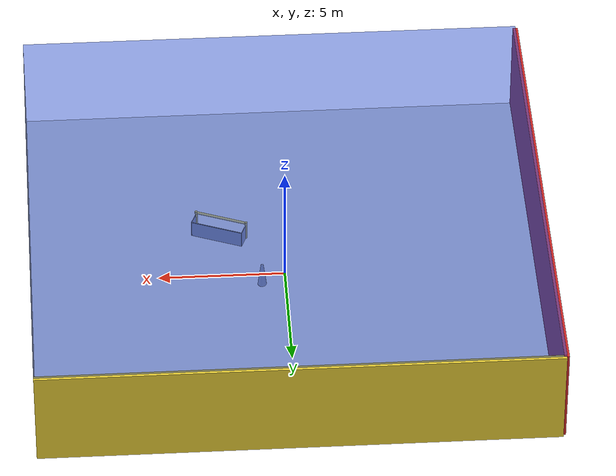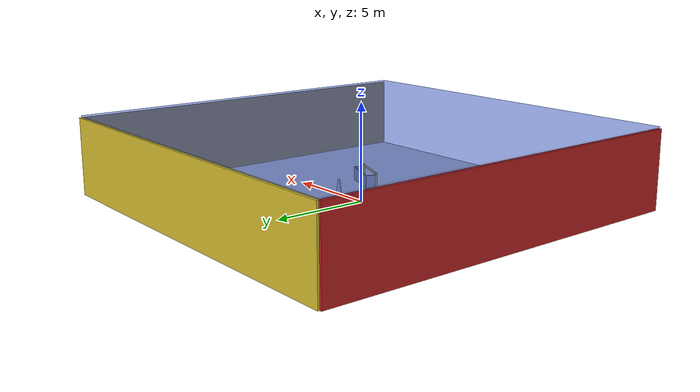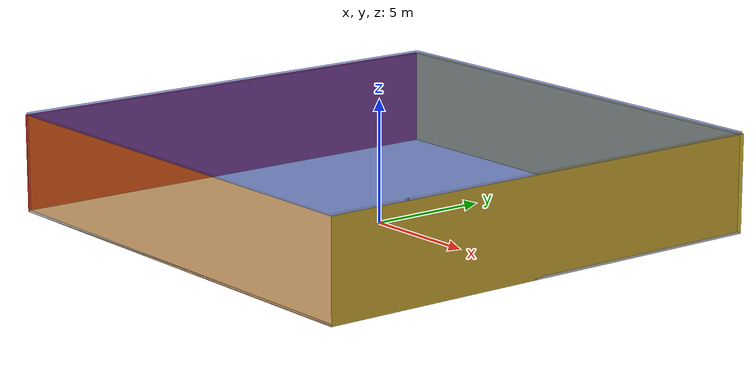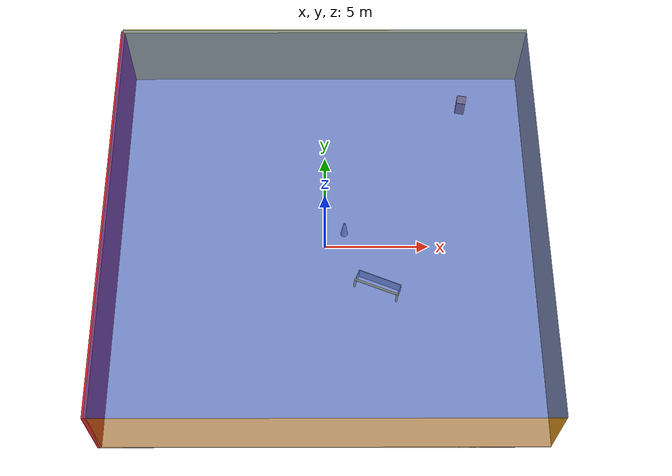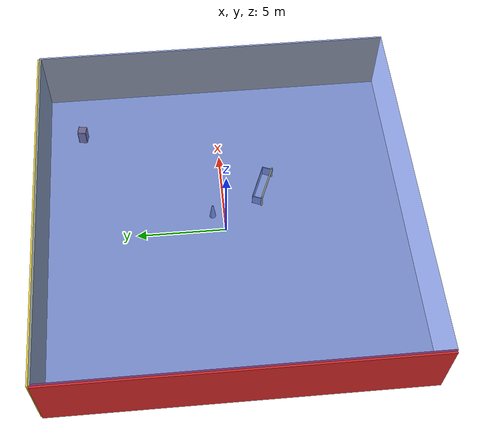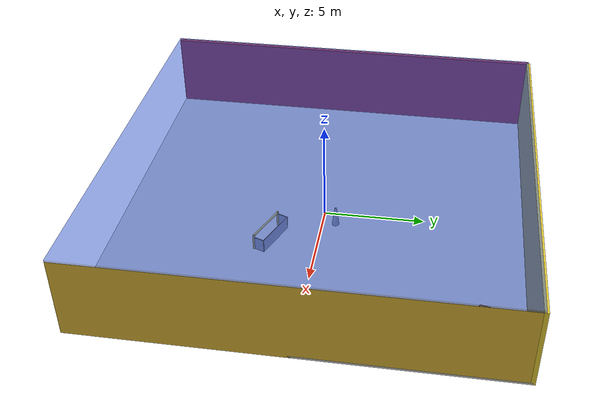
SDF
<sdf version="1.4">
 <world name="default">
  <physics type="ode">
   <max_step_size>0.001</max_step_size>
   <real_time_factor>1</real_time_factor>
   <real_time_update_rate>1000</real_time_update_rate>
   <gravity>0 0 -9.8</gravity>
  </physics>
  <scene><ambient>0.4 0.4 0.4 1</ambient><background>0.7 0.7 0.7 1</background><shadows>1</shadows></scene>
  <model name="Surrounding">
   <static>1</static>
   <link name="Ceiling">
    <collision name="Ceiling_Collision"><geometry><box><size>20 20 0.1</size></box></geometry></collision>
    <visual name="Ceiling_Visual">
     <geometry><box><size>20 20 0.1</size></box></geometry>
     <material>
      <script><uri>file://media/materials/scripts/gazebo.material</uri><name>Gazebo/BlueTransparent</name></script>
     </material>
    </visual>
    <pose>0 0 4.05 0 0 0</pose>
   </link>
   <link name="Wall_South">
    <collision name="Wall_South_Collision">
     <geometry><box><size>20 0 4</size></box></geometry>
     <pose>0 0 2 0 -0 0</pose>
    </collision>
    <visual name="Wall_South_Visual">
     <pose>0 0 2 0 -0 0</pose>
     <geometry><box><size>20 0 4</size></box></geometry>
     <material>
      <script>
       <uri>file://media/materials/scripts/gazebo.material</uri>
       <name>Gazebo/OrangeTransparent</name>
      </script>
     </material>
    </visual>
    <velocity_decay><linear>0</linear><angular>0</angular></velocity_decay>
    <pose>0 -10 0 0 -0 0</pose>
   </link>
   <link name="Wall_East">
    <collision name="Wall_21_Collision">
     <geometry><box><size>20 0 4</size></box></geometry>
     <pose>0 0 2 0 -0 0</pose>
    </collision>
    <visual name="Wall_21_Visual">
     <pose>0 0 2 0 -0 0</pose>
     <geometry><box><size>20 0 4</size></box></geometry>
     <material>
      <script><uri>file://media/materials/scripts/gazebo.material</uri><name>Gazebo/Gold</name></script>
     </material>
    </visual>
    <velocity_decay><linear>0</linear><angular>0</angular></velocity_decay>
    <pose>10 0 0 0 -0 1.5708</pose>
   </link>
   <link name="Wall_North">
    <collision name="Wall_22_Collision">
     <geometry><box><size>20 0.2 4</size></box></geometry>
     <pose>0 0 2 0 -0 0</pose>
    </collision>
    <visual name="Wall_22_Visual">
     <pose>0 0 2 0 -0 0</pose>
     <geometry><box><size>20 0.2 4</size></box></geometry>
     <material>
      <script><uri>file://media/materials/scripts/gazebo.material</uri><name>Gazebo/ZincYellow</name></script>
     </material>
    </visual>
    <velocity_decay><linear>0</linear><angular>0</angular></velocity_decay>
    <pose>0 10 0 0 -0 0</pose>
   </link>
   <link name="Wall_West">
    <collision name="Wall_23_Collision">
     <geometry><box><size>20 0.2 4</size></box></geometry>
     <pose>0 0 2 0 -0 0</pose>
    </collision>
    <visual name="Wall_23_Visual">
     <pose>0 0 2 0 -0 0</pose>
     <geometry><box><size>20 0.2 4</size></box></geometry>
     <material>
      <script><uri>file://media/materials/scripts/gazebo.material</uri><name>Gazebo/RedBright</name></script>
     </material>
    </visual>
    <velocity_decay><linear>0</linear><angular>0</angular></velocity_decay>
    <pose>-10 0 0 0 0 -1.5708</pose>
   </link>
   <link name="Ground_link">
    <collision name="collision">
     <pose>0 0 .05 0 -0 0</pose>
     <geometry><box><size>20 20 0.1</size></box></geometry>
    </collision>
    <visual name="visual">
     <pose>0 0 .05 0 -0 0</pose>
     <geometry><box><size>20 20 0.1</size></box></geometry>
     <material>
      <script><uri>file://media/materials/scripts/gazebo.material</uri><name>Gazebo/CeilingTiled</name></script>
     </material>
    </visual>
   </link>
   <static>1</static>
  </model>
  <spherical_coordinates>
   <surface_model>EARTH_WGS84</surface_model>
   <latitude_deg>0</latitude_deg>
   <longitude_deg>0</longitude_deg>
   <elevation>0</elevation>
   <heading_deg>0</heading_deg>
  </spherical_coordinates>
  <light name="lightball_0" type="diffuse">
   <diffuse>0.8 0.8 0.8 1</diffuse>
   <specular>0.2 0.2 0.2 1</specular>
   <attenuation>
    <range>100</range>
    <constant>0.7</constant>
    <linear>0.01</linear>
    <quadratic>0.001</quadratic>
   </attenuation>
   <direction>-0.5 0.1 -0.9</direction>
   <pose>0.619877260885 3.64758029408 1.17584231987 0 0 0</pose>
  </light>
  <light name="lightball_1" type="diffuse">
   <diffuse>0.8 0.8 0.8 1</diffuse>
   <specular>0.2 0.2 0.2 1</specular>
   <attenuation>
    <range>100</range>
    <constant>0.7</constant>
    <linear>0.01</linear>
    <quadratic>0.001</quadratic>
   </attenuation>
   <direction>-0.5 0.1 -0.9</direction>
   <pose>2.43843960584 -9.07269196643 1.19375083716 0 0 0</pose>
  </light>
  <light name="lightball_2" type="diffuse">
   <diffuse>0.8 0.8 0.8 1</diffuse>
   <specular>0.2 0.2 0.2 1</specular>
   <attenuation>
    <range>100</range>
    <constant>0.7</constant>
    <linear>0.01</linear>
    <quadratic>0.001</quadratic>
   </attenuation>
   <direction>-0.5 0.1 -0.9</direction>
   <pose>-7.3543943967 0.325594392752 0.667025868817 0 0 0</pose>
  </light>
  <light name="lightball_3" type="diffuse">
   <diffuse>0.8 0.8 0.8 1</diffuse>
   <specular>0.2 0.2 0.2 1</specular>
   <attenuation>
    <range>100</range>
    <constant>0.7</constant>
    <linear>0.01</linear>
    <quadratic>0.001</quadratic>
   </attenuation>
   <direction>-0.5 0.1 -0.9</direction>
   <pose>1.89724349046 -5.85414876488 1.95950055832 0 0 0</pose>
  </light>
  <light name="lightball_4" type="diffuse">
   <diffuse>0.8 0.8 0.8 1</diffuse>
   <specular>0.2 0.2 0.2 1</specular>
   <attenuation>
    <range>100</range>
    <constant>0.7</constant>
    <linear>0.01</linear>
    <quadratic>0.001</quadratic>
   </attenuation>
   <direction>-0.5 0.1 -0.9</direction>
   <pose>8.47137895078 7.45737116308 2.96643043416 0 0 0</pose>
  </light>
  <light name="lightball_5" type="diffuse">
   <diffuse>0.8 0.8 0.8 1</diffuse>
   <specular>0.2 0.2 0.2 1</specular>
   <attenuation>
    <range>100</range>
    <constant>0.7</constant>
    <linear>0.01</linear>
    <quadratic>0.001</quadratic>
   </attenuation>
   <direction>-0.5 0.1 -0.9</direction>
   <pose>2.65766351675 7.20589057557 2.32089008759 0 0 0</pose>
  </light>
  <light name="lightball_6" type="diffuse">
   <diffuse>0.8 0.8 0.8 1</diffuse>
   <specular>0.2 0.2 0.2 1</specular>
   <attenuation>
    <range>100</range>
    <constant>0.7</constant>
    <linear>0.01</linear>
    <quadratic>0.001</quadratic>
   </attenuation>
   <direction>-0.5 0.1 -0.9</direction>
   <pose>-5.23797684275 5.48426164864 0.714827281425 0 0 0</pose>
  </light>
  <light name="lightball_7" type="diffuse">
   <diffuse>0.8 0.8 0.8 1</diffuse>
   <specular>0.2 0.2 0.2 1</specular>
   <attenuation>
    <range>100</range>
    <constant>0.7</constant>
    <linear>0.01</linear>
    <quadratic>0.001</quadratic>
   </attenuation>
   <direction>-0.5 0.1 -0.9</direction>
   <pose>4.20461410533 -3.68329513523 1.55830768221 0 0 0</pose>
  </light>
  <include>
   <uri>model://robocup_3Dsim_goal</uri>
   <pose>2.38373304742 -2.5280378399 0 0 0 1.18773014508</pose>
  </include>
  <include>
   <uri>model://construction_cone</uri>
   <pose>0.933027614638 0.688789666233 0 0 0 2.6818033398</pose>
  </include>
  <include><uri>model://cabinet</uri><pose>6.97746995978 7.93167008523 0 0 0 2.95879363114</pose></include>
 </world>
</sdf>

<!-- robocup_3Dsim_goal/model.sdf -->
<sdf version="1.5">
  <model name="robocup_3d_goal">
    <static>true</static>
    <link name="left_post">
      <pose>0 1.05 0.45 0 0 0</pose>
      <collision name="collision">
        <geometry>
          <cylinder>
            <radius>0.05</radius>
            <length>0.9</length>
          </cylinder>
        </geometry>
      </collision>
      <visual name="visual">
        <geometry>
          <cylinder>
            <radius>0.05</radius>
            <length>0.9</length>
          </cylinder>
        </geometry>
        <material>
          <script>
            <uri>file://media/materials/scripts/gazebo.material</uri>
            <name>Gazebo/ZincYellow</name>
          </script>
        </material>
      </visual>
    </link>
    <link name="left_support_horiz_lower">
      <pose>0.30 1.05 0.01 0 0 0</pose>
      <collision name="collision">
        <geometry>
          <box>
            <size>0.50 0.02 0.02</size>
          </box>
        </geometry>
      </collision>
      <visual name="visual">
        <geometry>
          <box>
            <size>0.50 0.02 0.02</size>
          </box>
        </geometry>
        <material>
          <script>
            <uri>file://media/materials/scripts/gazebo.material</uri>
            <name>Gazebo/White</name>
          </script>
        </material>
      </visual>
    </link>
    <link name="left_support_horiz_upper">
      <pose>0.30 1.05 0.79 0 0 0</pose>
      <collision name="collision">
        <geometry>
          <box>
            <size>0.50 0.02 0.02</size>
          </box>
        </geometry>
      </collision>
      <visual name="visual">
        <geometry>
          <box>
            <size>0.50 0.02 0.02</size>
          </box>
        </geometry>
        <material>
          <script>
            <uri>file://media/materials/scripts/gazebo.material</uri>
            <name>Gazebo/White</name>
          </script>
        </material>
      </visual>
    </link>
    <link name="left_support_vertical">
      <pose>0.56 1.05 0.4 0 1.5708 0</pose>
      <collision name="collision">
        <geometry>
          <box>
            <size>0.80 0.02 0.02</size>
          </box>
        </geometry>
      </collision>
      <visual name="visual">
        <geometry>
          <box>
            <size>0.80 0.02 0.02</size>
          </box>
        </geometry>
        <material>
          <script>
            <uri>file://media/materials/scripts/gazebo.material</uri>
            <name>Gazebo/White</name>
          </script>
        </material>
      </visual>
    </link>
    <link name="right_support_horiz_lower">
      <pose>0.30 -1.05 0.01 0 0 0</pose>
      <collision name="collision">
        <geometry>
          <box>
            <size>0.50 0.02 0.02</size>
          </box>
        </geometry>
      </collision>
      <visual name="visual">
        <geometry>
          <box>
            <size>0.50 0.02 0.02</size>
          </box>
        </geometry>
        <material>
          <script>
            <uri>file://media/materials/scripts/gazebo.material</uri>
            <name>Gazebo/White</name>
          </script>
        </material>
      </visual>
    </link>
    <link name="right_support_horiz_upper">
      <pose>0.30 -1.05 0.79 0 0 0</pose>
      <collision name="collision">
        <geometry>
          <box>
            <size>0.50 0.02 0.02</size>
          </box>
        </geometry>
      </collision>
      <visual name="visual">
        <geometry>
          <box>
            <size>0.50 0.02 0.02</size>
          </box>
        </geometry>
        <material>
          <script>
            <uri>file://media/materials/scripts/gazebo.material</uri>
            <name>Gazebo/White</name>
          </script>
        </material>
      </visual>
    </link>
    <link name="right_support_vertical">
      <pose>0.56 -1.05 0.4 0 1.5708 0</pose>
      <collision name="collision">
        <geometry>
          <box>
            <size>0.80 0.02 0.02</size>
          </box>
        </geometry>
      </collision>
      <visual name="visual">
        <geometry>
          <box>
            <size>0.80 0.02 0.02</size>
          </box>
        </geometry>
        <material>
          <script>
            <uri>file://media/materials/scripts/gazebo.material</uri>
            <name>Gazebo/White</name>
          </script>
        </material>
      </visual>
    </link>
    <link name="center_support_horiz_lower">
      <pose>0.56 0 0.01 0 1.5708 0</pose>
      <collision name="collision">
        <geometry>
          <box>
            <size>0.02 2.08 0.02</size>
          </box>
        </geometry>
      </collision>
      <visual name="visual">
        <geometry>
          <box>
            <size>0.02 2.08 0.02</size>
          </box>
        </geometry>
        <material>
          <script>
            <uri>file://media/materials/scripts/gazebo.material</uri>
            <name>Gazebo/White</name>
          </script>
        </material>
      </visual>
    </link>
    <link name="center_support_horiz_upper">
      <pose>0.56 0 0.79 0 1.5708 0</pose>
      <collision name="collision">
        <geometry>
          <box>
            <size>0.02 2.08 0.02</size>
          </box>
        </geometry>
      </collision>
      <visual name="visual">
        <geometry>
          <box>
            <size>0.02 2.08 0.02</size>
          </box>
        </geometry>
        <material>
          <script>
            <uri>file://media/materials/scripts/gazebo.material</uri>
            <name>Gazebo/White</name>
          </script>
        </material>
      </visual>
    </link>
    <link name="right_post">
      <pose>0 -1.05 0.45 0 0 0</pose>
      <collision name="collision">
        <geometry>
          <cylinder>
            <radius>0.05</radius>
            <length>0.9</length>
          </cylinder>
        </geometry>
      </collision>
      <visual name="visual">
        <geometry>
          <cylinder>
            <radius>0.05</radius>
            <length>0.9</length>
          </cylinder>
        </geometry>
        <material>
          <script>
            <uri>file://media/materials/scripts/gazebo.material</uri>
            <name>Gazebo/ZincYellow</name>
          </script>
        </material>
      </visual>
    </link>
    <link name="crossbar">
      <pose>0 0 0.85 1.57 1.57 0</pose>
      <collision name="collision">
        <geometry>
          <cylinder>
            <radius>0.05</radius>
            <length>2.0</length>
          </cylinder>
        </geometry>
      </collision>
      <visual name="visual">
        <geometry>
          <cylinder>
            <radius>0.05</radius>
            <length>2.0</length>
          </cylinder>
        </geometry>
        <material>
          <script>
            <uri>file://media/materials/scripts/gazebo.material</uri>
            <name>Gazebo/ZincYellow</name>
          </script>
        </material>
      </visual>
    </link>
    <link name="center_net">
      <pose>0.56 0 0.40 0 0 0</pose>
      <collision name="collision">
        <geometry>
          <box>
            <size>0.01 2.1 0.80</size>
          </box>
        </geometry>
      </collision>
      <visual name="visual">
        <geometry>
          <box>
            <size>0.01 2.1 0.80</size>
          </box>
        </geometry>
        <material>
          <script>
            <uri>model://../model_source/models/robocup09_spl_field/materials/scripts/</uri>
            <uri>model://../model_source/models/robocup09_spl_field/materials/textures/</uri>
            <name>RoboCup/Net</name>
          </script>
        </material>
      </visual>
    </link>
    <link name="left_net">
      <pose>0.30 1.05 0.40 0 0 0</pose>
      <collision name="collision">
        <geometry>
          <box>
            <size>0.50 0.01 0.76</size>
          </box>
        </geometry>
      </collision>
      <visual name="visual">
        <geometry>
          <box>
            <size>0.50 0.01 0.76</size>
          </box>
        </geometry>
        <material>
          <script>
            <uri>model://../model_source/models/robocup09_spl_field/materials/scripts/</uri>
            <uri>model://../model_source/models/robocup09_spl_field/materials/textures/</uri>
            <name>RoboCup/Net</name>
          </script>
        </material>
      </visual>
    </link>
    <link name="right_net">
      <pose>0.30 -1.05 0.40 0 0 0</pose>
      <collision name="collision">
        <geometry>
          <box>
            <size>0.50 0.01 0.76</size>
          </box>
        </geometry>
      </collision>
      <visual name="visual">
        <geometry>
          <box>
            <size>0.50 0.01 0.76</size>
          </box>
        </geometry>
        <material>
          <script>
            <uri>model://../model_source/models/robocup09_spl_field/materials/scripts/</uri>
            <uri>model://../model_source/models/robocup09_spl_field/materials/textures/</uri>
            <name>RoboCup/Net</name>
          </script>
        </material>
      </visual>
    </link>
  </model>
</sdf>

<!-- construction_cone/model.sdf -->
<sdf version="1.5">
  <model name="Construction Cone">
    <link name="link">
      <collision name="collision">
        <geometry>
          <mesh>
            <scale>10 10 10</scale>
            <uri>file://isr-testbed/construction_cone/meshes/construction_cone.dae</uri>
          </mesh>
        </geometry>
      </collision>
      <visual name="visual">
        <geometry>
          <mesh>
            <scale>10 10 10</scale>
            <uri>file://isr-testbed/construction_cone/meshes/construction_cone.dae</uri>
          </mesh>
        </geometry>
      </visual>
    </link>
  </model>
</sdf>

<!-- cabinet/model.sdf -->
<sdf version="1.5">
  <model name="cabinet">
    <static>true</static>
    <link name="cabinet_bottom_plate">
      <inertial>
        <pose>0 0 -1 0 0 0</pose>
        <inertia>
          <ixx>2.050000</ixx>
          <ixy>0</ixy>
          <ixz>0</ixz>
          <iyy>2.050000</iyy>
          <iyz>0</iyz>
          <izz>2.050000</izz>
        </inertia>
        <mass>25.000000</mass>
      </inertial>
      <collision name="cabinet_bottom_plate_geom">
        <pose>0 0 0.010000 0 0 0</pose>
        <geometry>
          <box>
            <size>0.450000 0.450000 0.020000</size>
          </box>
        </geometry>
      </collision>
      <visual name="cabinet_bottom_plate_geom_visual">
        <pose>0 0 0.010000 0 0 0</pose>
        <geometry>
          <box>
            <size>0.450000 0.450000 0.020000</size>
          </box>
        </geometry>
        <material>
          <script>
            <uri>model://media/materials/scripts/gazebo.material</uri>
            <name>Gazebo/Wood</name>
          </script>
        </material>
      </visual>
      <collision name="cabinet_bottom_plate_geom_cabinet_back_plate">
        <pose>0.235000 0 0.510000 0 0 0</pose>
        <geometry>
          <box>
            <size>0.020000 0.450000 1.020000</size>
          </box>
        </geometry>
      </collision>
      <visual name="cabinet_bottom_plate_geom_cabinet_back_plate_visual">
        <pose>0.235000 0 0.510000 0 0 0</pose>
        <geometry>
          <box>
            <size>0.020000 0.450000 1.020000</size>
          </box>
        </geometry>
        <material>
          <script>
            <uri>model://media/materials/scripts/gazebo.material</uri>
            <name>Gazebo/Wood</name>
          </script>
        </material>
      </visual>
      <collision name="cabinet_bottom_plate_geom_cabinet_left_plate">
        <pose>0 0.235000 0.510000 0 0 0</pose>
        <geometry>
          <box>
            <size>0.450000 0.020000 1.020000</size>
          </box>
        </geometry>
      </collision>
      <visual name="cabinet_bottom_plate_geom_cabinet_left_plate_visual">
        <pose>0 0.235000 0.510000 0 0 0</pose>
        <geometry>
          <box>
            <size>0.450000 0.020000 1.020000</size>
          </box>
        </geometry>
        <material>
          <script>
            <uri>model://media/materials/scripts/gazebo.material</uri>
            <name>Gazebo/Wood</name>
          </script>
        </material>
      </visual>
      <collision name="cabinet_bottom_plate_geom_cabinet_middle_plate">
        <pose>0 0 0.510000 0 0 0</pose>
        <geometry>
          <box>
            <size>0.450000 0.450000 0.020000</size>
          </box>
        </geometry>
      </collision>
      <visual name="cabinet_bottom_plate_geom_cabinet_middle_plate_visual">
        <pose>0 0 0.510000 0 0 0</pose>
        <geometry>
          <box>
            <size>0.450000 0.450000 0.020000</size>
          </box>
        </geometry>
        <material>
          <script>
            <uri>model://media/materials/scripts/gazebo.material</uri>
            <name>Gazebo/Wood</name>
          </script>
        </material>
      </visual>
      <collision name="cabinet_bottom_plate_geom_cabinet_right_plate">
        <pose>0 -0.235000 0.510000 0 0 0</pose>
        <geometry>
          <box>
            <size>0.450000 0.020000 1.020000</size>
          </box>
        </geometry>
      </collision>
      <visual name="cabinet_bottom_plate_geom_cabinet_right_plate_visual">
        <pose>0 -0.235000 0.510000 0 0 0</pose>
        <geometry>
          <box>
            <size>0.450000 0.020000 1.020000</size>
          </box>
        </geometry>
        <material>
          <script>
            <uri>model://media/materials/scripts/gazebo.material</uri>
            <name>Gazebo/Wood</name>
          </script>
        </material>
      </visual>
      <collision name="cabinet_bottom_plate_geom_cabinet_top_plate">
        <pose>0 0 1.010000 0 0 0</pose>
        <geometry>
          <box>
            <size>0.450000 0.450000 0.020000</size>
          </box>
        </geometry>
      </collision>
      <visual name="cabinet_bottom_plate_geom_cabinet_top_plate_visual">
        <pose>0 0 1.010000 0 0 0</pose>
        <geometry>
          <box>
            <size>0.450000 0.450000 0.020000</size>
          </box>
        </geometry>
        <material>
          <script>
            <uri>model://media/materials/scripts/gazebo.material</uri>
            <name>Gazebo/Wood</name>
          </script>
        </material>
      </visual>
    </link>
  </model>
</sdf>
